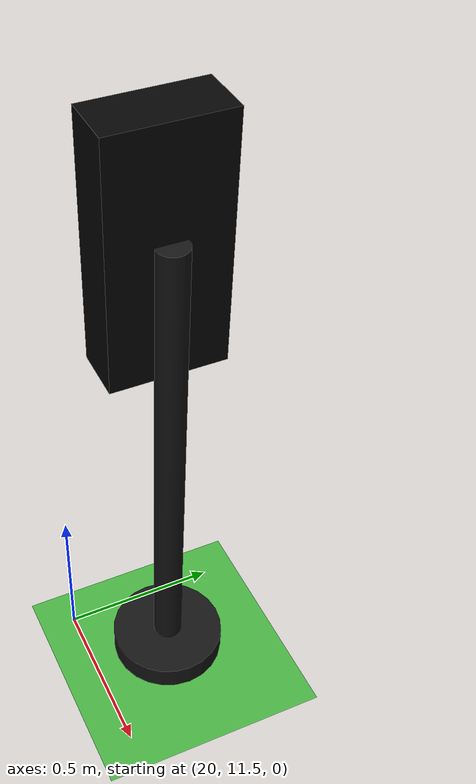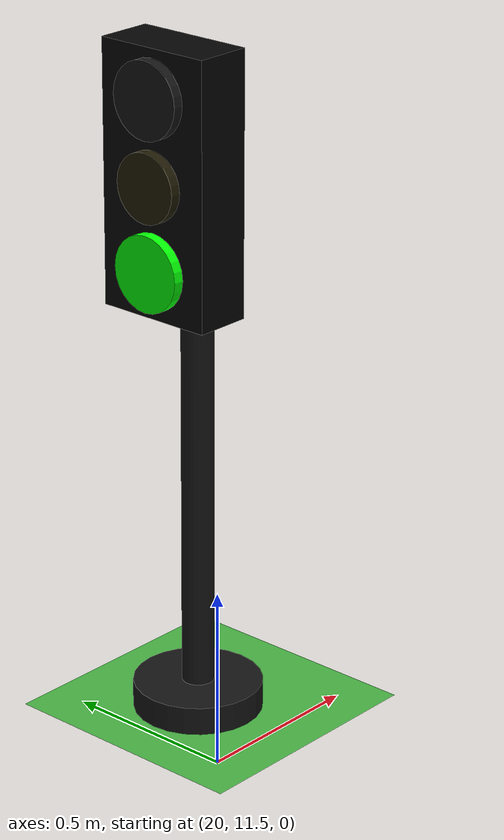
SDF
<sdf version="1.10">
 <world name="city_second">
  <model name="ground_plane">
   <static>true</static>
   <link name="link">
    <collision name="collision">
     <geometry><plane><normal>0 0 1</normal><size>300 300</size></plane></geometry>
    </collision>
    <visual name="visual">
     <geometry><plane><normal>0 0 1</normal><size>300 300</size></plane></geometry>
     <material>
      <ambient>0.280000001 0.689999998 0.25999999 1</ambient>
      <diffuse>0.280000001 0.689999998 0.25999999 1</diffuse>
      <specular>0.0299999993 0.0299999993 0.0299999993 1</specular>
     </material>
    </visual>
    <inertial>
     <mass>1</mass>
     <inertia><ixx>1</ixx><ixy>0</ixy><ixz>0</ixz><iyy>1</iyy><iyz>0</iyz><izz>1</izz></inertia>
    </inertial>
   </link>
  </model>
  <model name="simple_traffic_light_green_west_1_2">
   <static>true</static>
   <pose>20.209720938501111 11.759744658745365 -3.4694469519536142e-17 0 0 1.5707999672671742</pose>
   <link name="base">
    <pose>0 0 0.040000000000000001 0 0 0</pose>
    <collision name="collision">
     <geometry>
      <cylinder><radius>0.17999999999999999</radius><length>0.080000000000000002</length></cylinder>
     </geometry>
    </collision>
    <visual name="visual">
     <geometry>
      <cylinder><radius>0.17999999999999999</radius><length>0.080000000000000002</length></cylinder>
     </geometry>
     <material>
      <ambient>0.0799999982 0.0799999982 0.0799999982 1</ambient>
      <diffuse>0.0799999982 0.0799999982 0.0799999982 1</diffuse>
      <specular>0.150000006 0.150000006 0.150000006 1</specular>
      <emissive>0 0 0 1</emissive>
     </material>
    </visual>
    <inertial>
     <mass>1</mass>
     <inertia><ixx>1</ixx><ixy>0</ixy><ixz>0</ixz><iyy>1</iyy><iyz>0</iyz><izz>1</izz></inertia>
    </inertial>
   </link>
   <link name="pole">
    <pose>0 -3.5527136788005009e-14 0.80000000000000004 0 0 6.6613381477509392e-16</pose>
    <collision name="collision">
     <geometry>
      <cylinder><radius>0.044999999999999998</radius><length>1.6000000000000001</length></cylinder>
     </geometry>
    </collision>
    <visual name="visual">
     <geometry>
      <cylinder><radius>0.044999999999999998</radius><length>1.6000000000000001</length></cylinder>
     </geometry>
     <material>
      <ambient>0.0799999982 0.0799999982 0.0799999982 1</ambient>
      <diffuse>0.0799999982 0.0799999982 0.0799999982 1</diffuse>
      <specular>0.150000006 0.150000006 0.150000006 1</specular>
      <emissive>0 0 0 1</emissive>
     </material>
    </visual>
    <inertial>
     <mass>1</mass>
     <inertia><ixx>1</ixx><ixy>0</ixy><ixz>0</ixz><iyy>1</iyy><iyz>0</iyz><izz>1</izz></inertia>
    </inertial>
   </link>
   <link name="signal_box">
    <pose>-7.1054273576010019e-15 0.089999999999957225 1.5500000000000003 0 0 6.6613381477509392e-16</pose>
    <collision name="collision">
     <geometry><box><size>0.34000000000000002 0.16 0.71999999999999997</size></box></geometry>
    </collision>
    <visual name="visual">
     <geometry><box><size>0.34000000000000002 0.16 0.71999999999999997</size></box></geometry>
     <material>
      <ambient>0.0199999996 0.0199999996 0.0199999996 1</ambient>
      <diffuse>0.0199999996 0.0199999996 0.0199999996 1</diffuse>
      <specular>0.150000006 0.150000006 0.150000006 1</specular>
      <emissive>0 0 0 1</emissive>
     </material>
    </visual>
    <inertial>
     <mass>1</mass>
     <inertia><ixx>1</ixx><ixy>0</ixy><ixz>0</ixz><iyy>1</iyy><iyz>0</iyz><izz>1</izz></inertia>
    </inertial>
   </link>
   <link name="red_lens">
    <pose>0 0.18099999999995831 1.7800000000000002 1.5707963268 7.8504622948811713e-17 -5.7308374741955815e-15</pose>
    <collision name="collision">
     <geometry><cylinder><radius>0.105</radius><length>0.035000000000000003</length></cylinder></geometry>
    </collision>
    <visual name="visual">
     <geometry><cylinder><radius>0.105</radius><length>0.035000000000000003</length></cylinder></geometry>
     <material>
      <ambient>0.0799999982 0.0799999982 0.0799999982 1</ambient>
      <diffuse>0.0799999982 0.0799999982 0.0799999982 1</diffuse>
      <specular>0.150000006 0.150000006 0.150000006 1</specular>
      <emissive>0 0 0 1</emissive>
     </material>
    </visual>
    <inertial>
     <mass>1</mass>
     <inertia><ixx>1</ixx><ixy>0</ixy><ixz>0</ixz><iyy>1</iyy><iyz>0</iyz><izz>1</izz></inertia>
    </inertial>
   </link>
   <link name="yellow_lens">
    <pose>-3.5527136788005009e-15 0.18199999999997374 1.5500000000000003 1.5707963268 7.8504622948811713e-17 -5.7308374741955815e-15</pose>
    <collision name="collision">
     <geometry>
      <cylinder><radius>0.095000000000000001</radius><length>0.035000000000000003</length></cylinder>
     </geometry>
    </collision>
    <visual name="visual">
     <geometry>
      <cylinder><radius>0.095000000000000001</radius><length>0.035000000000000003</length></cylinder>
     </geometry>
     <material>
      <ambient>0.119999997 0.100000001 0.0199999996 1</ambient>
      <diffuse>0.119999997 0.100000001 0.0199999996 1</diffuse>
      <specular>0.150000006 0.150000006 0.150000006 1</specular>
      <emissive>0 0 0 1</emissive>
     </material>
    </visual>
    <inertial>
     <mass>1</mass>
     <inertia><ixx>1</ixx><ixy>0</ixy><ixz>0</ixz><iyy>1</iyy><iyz>0</iyz><izz>1</izz></inertia>
    </inertial>
   </link>
   <link name="green_lens">
    <pose>-1.0658141036401503e-14 0.18299999999997496 1.3200000000000003 1.5707963268 7.8504622948811713e-17 -5.7308374741955815e-15</pose>
    <collision name="collision">
     <geometry><cylinder><radius>0.105</radius><length>0.035000000000000003</length></cylinder></geometry>
    </collision>
    <visual name="visual">
     <geometry><cylinder><radius>0.105</radius><length>0.035000000000000003</length></cylinder></geometry>
     <material>
      <ambient>0.0199999996 1 0.0199999996 1</ambient>
      <diffuse>0.0199999996 1 0.0199999996 1</diffuse>
      <specular>0.150000006 0.150000006 0.150000006 1</specular>
      <emissive>0.0199999996 1 0.0199999996 1</emissive>
     </material>
    </visual>
    <inertial>
     <mass>1</mass>
     <inertia><ixx>1</ixx><ixy>0</ixy><ixz>0</ixz><iyy>1</iyy><iyz>0</iyz><izz>1</izz></inertia>
    </inertial>
   </link>
  </model>
 </world>
</sdf>
